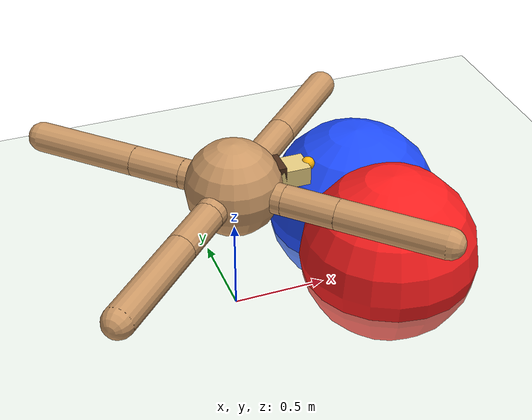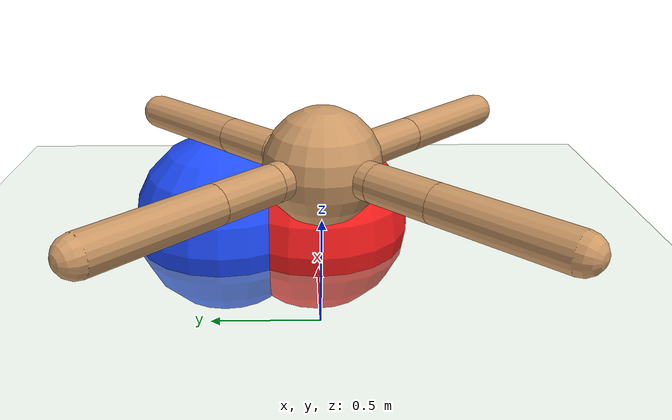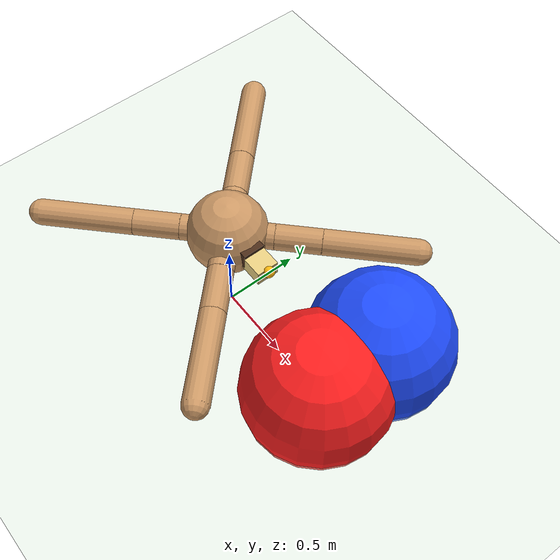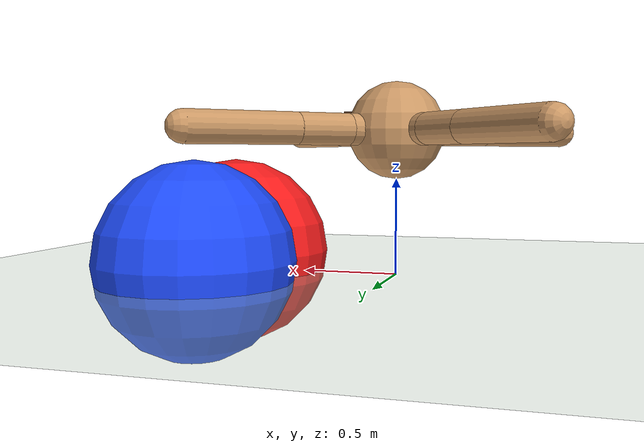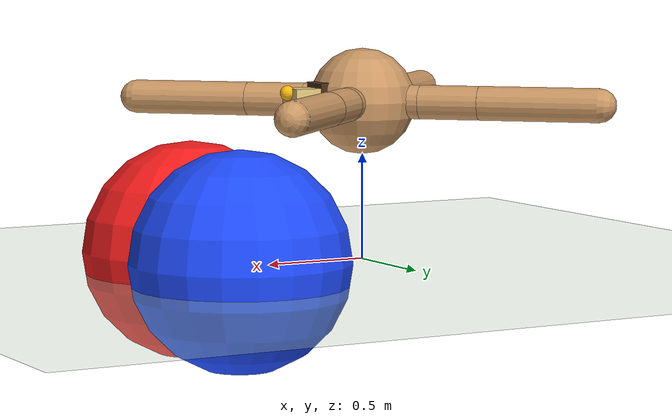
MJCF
<mujoco model="ant">
  <compiler angle="degree" coordinate="local" inertiafromgeom="true"/>
  <option integrator="RK4" timestep="0.01"/>
  <custom>
    <numeric data="0.0 0.0 0.55 1.0 0.0 0.0 0.0 0.0 1.0 0.0 -1.0 0.0 -1.0 0.0 1.0" name="init_qpos"/>
  </custom>
  <default>
    <joint armature="1" damping="1" limited="true"/>
    <geom conaffinity="0" condim="3" density="5.0" friction="1 0.5 0.5" margin="0.01" rgba="0.8 0.6 0.4 1"/>
  </default>
  <asset>
    <texture builtin="gradient" height="100" rgb1="1 1 1" rgb2="0 0 0" type="skybox" width="100"/>
    <texture builtin="flat" height="1278" mark="cross" markrgb="1 1 1" name="texgeom" random="0.01" rgb1="0.8 0.6 0.4" rgb2="0.8 0.6 0.4" type="cube" width="127"/>
    <texture builtin="checker" height="100" name="texplane" rgb1="0 0 0" rgb2="0.8 0.8 0.8" type="2d" width="100"/>
    <material name="MatPlane" reflectance="0.5" shininess="1" specular="1" texrepeat="60 60" texture="texplane"/>
    <material name="geom" texture="texgeom" texuniform="true"/>
  </asset>
  <worldbody>
    <light cutoff="100" diffuse="1 1 1" dir="-0 0 -1.3" directional="true" exponent="1" pos="0 0 1.3" specular=".1 .1 .1"/>
    <geom conaffinity="1" condim="3" material="MatPlane" name="floor" pos="0 0 0" rgba="0.8 0.9 0.8 1" size="40 40 40" type="plane"/>
    <body name="torso" pos="0 0 0.75">
      <camera name="track" mode="trackcom" pos="0 -3 0.3" xyaxes="1 0 0 0 0 1"/>
      <geom name="torso_geom" pos="0 0 0" size="0.25" type="sphere"/>
      <body name="head" pos="0.30 0 0.02">
        <geom name="head_geom" type="box" size="0.09 0.07 0.05" rgba="0.90 0.80 0.50 1"/>
        <geom name="hair" type="box" size="0.03 0.07 0.055" pos="-0.07 0 0.02" rgba="0.30 0.18 0.10 1"/>
        <geom name="nose" type="sphere" size="0.035" pos="0.10 0 0.03" rgba="1.0 0.72 0.05 1"/>
        <camera name="left_eye"  pos="0.07 0.0245 0.04" xyaxes="0 -1 0  0.574 0 0.819" fovy="120"/>
        <camera name="right_eye" pos="0.07 -0.0245 0.04" xyaxes="0 -1 0  0.574 0 0.819" fovy="120"/>
      </body>

      <joint armature="0" damping="0" limited="false" margin="0.01" name="root" pos="0 0 0" type="free"/>
      <body name="front_left_leg" pos="0 0 0">
        <geom fromto="0.0 0.0 0.0 0.2 0.2 0.0" name="aux_1_geom" size="0.08" type="capsule"/>
        <body name="aux_1" pos="0.2 0.2 0">
          <joint axis="0 0 1" name="hip_1" pos="0.0 0.0 0.0" range="-30 30" type="hinge"/>
          <geom fromto="0.0 0.0 0.0 0.2 0.2 0.0" name="left_leg_geom" size="0.08" type="capsule"/>
          <body pos="0.2 0.2 0">
            <joint axis="-1 1 0" name="ankle_1" pos="0.0 0.0 0.0" range="30 70" type="hinge"/>
            <geom fromto="0.0 0.0 0.0 0.4 0.4 0.0" name="left_ankle_geom" size="0.08" type="capsule"/>
          </body>
        </body>
      </body>
      <body name="front_right_leg" pos="0 0 0">
        <geom fromto="0.0 0.0 0.0 -0.2 0.2 0.0" name="aux_2_geom" size="0.08" type="capsule"/>
        <body name="aux_2" pos="-0.2 0.2 0">
          <joint axis="0 0 1" name="hip_2" pos="0.0 0.0 0.0" range="-30 30" type="hinge"/>
          <geom fromto="0.0 0.0 0.0 -0.2 0.2 0.0" name="right_leg_geom" size="0.08" type="capsule"/>
          <body pos="-0.2 0.2 0">
            <joint axis="1 1 0" name="ankle_2" pos="0.0 0.0 0.0" range="-70 -30" type="hinge"/>
            <geom fromto="0.0 0.0 0.0 -0.4 0.4 0.0" name="right_ankle_geom" size="0.08" type="capsule"/>
          </body>
        </body>
      </body>
      <body name="back_leg" pos="0 0 0">
        <geom fromto="0.0 0.0 0.0 -0.2 -0.2 0.0" name="aux_3_geom" size="0.08" type="capsule"/>
        <body name="aux_3" pos="-0.2 -0.2 0">
          <joint axis="0 0 1" name="hip_3" pos="0.0 0.0 0.0" range="-30 30" type="hinge"/>
          <geom fromto="0.0 0.0 0.0 -0.2 -0.2 0.0" name="back_leg_geom" size="0.08" type="capsule"/>
          <body pos="-0.2 -0.2 0">
            <joint axis="-1 1 0" name="ankle_3" pos="0.0 0.0 0.0" range="-70 -30" type="hinge"/>
            <geom fromto="0.0 0.0 0.0 -0.4 -0.4 0.0" name="third_ankle_geom" size="0.08" type="capsule"/>
          </body>
        </body>
      </body>
      <body name="right_back_leg" pos="0 0 0">
        <geom fromto="0.0 0.0 0.0 0.2 -0.2 0.0" name="aux_4_geom" size="0.08" type="capsule"/>
        <body name="aux_4" pos="0.2 -0.2 0">
          <joint axis="0 0 1" name="hip_4" pos="0.0 0.0 0.0" range="-30 30" type="hinge"/>
          <geom fromto="0.0 0.0 0.0 0.2 -0.2 0.0" name="rightback_leg_geom" size="0.08" type="capsule"/>
          <body pos="0.2 -0.2 0">
            <joint axis="1 1 0" name="ankle_4" pos="0.0 0.0 0.0" range="30 70" type="hinge"/>
            <geom fromto="0.0 0.0 0.0 0.4 -0.4 0.0" name="fourth_ankle_geom" size="0.08" type="capsule"/>
          </body>
        </body>
      </body>
    </body>
      <body name="target" pos="0.9 0 0.1">
      <freejoint/>
      <geom name="target_geom" type="sphere" size="0.5" rgba="1 0.12 0.12 1" contype="1" conaffinity="1" density="3"/>
    </body>
    <body name="target2" pos="0.9 0.5 0.1">
      <freejoint/>
      <geom name="target2_geom" type="sphere" size="0.5" rgba="0.12 0.30 1 1" contype="1" conaffinity="1" density="3"/>
    </body>
    <camera name="side" pos="1.4 -2.4 1.5" mode="targetbody" target="torso"/>
  </worldbody>
  <actuator>
    <motor ctrllimited="true" ctrlrange="-1.0 1.0" joint="hip_4" gear="150"/>
    <motor ctrllimited="true" ctrlrange="-1.0 1.0" joint="ankle_4" gear="150"/>
    <motor ctrllimited="true" ctrlrange="-1.0 1.0" joint="hip_1" gear="150"/>
    <motor ctrllimited="true" ctrlrange="-1.0 1.0" joint="ankle_1" gear="150"/>
    <motor ctrllimited="true" ctrlrange="-1.0 1.0" joint="hip_2" gear="150"/>
    <motor ctrllimited="true" ctrlrange="-1.0 1.0" joint="ankle_2" gear="150"/>
    <motor ctrllimited="true" ctrlrange="-1.0 1.0" joint="hip_3" gear="150"/>
    <motor ctrllimited="true" ctrlrange="-1.0 1.0" joint="ankle_3" gear="150"/>
  </actuator>
</mujoco>
